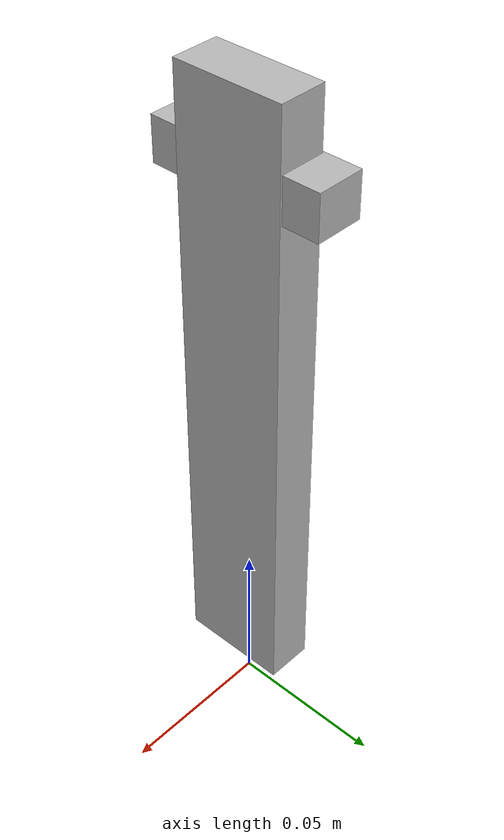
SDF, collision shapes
<?xml version='1.0'?>
<sdf version='1.6'>
  <model name='creeper_11_azul'>
    <link name='link'>
      <pose frame=''>0 -0 0.115 0 -0 0</pose>
      <inertial>
        <mass>0.00004</mass>
        <inertia>
          <ixx>2.01e-06</ixx>
          <ixy>0</ixy>
          <ixz>0</ixz>
          <iyy>2.01e-06</iyy>
          <iyz>0</iyz>
          <izz>5.9e-07</izz>
        </inertia>
        <pose frame=''>0 0 0 0 -0 0</pose>
      </inertial>
      <self_collide>0</self_collide>
      <enable_wind>0</enable_wind>
      <kinematic>0</kinematic>
      <gravity>1</gravity>
      <visual name='visual'>
        <pose frame=''>0 0 -0.15 0 0 0</pose>
        <geometry>
          <mesh>
            <uri>model://forca/creepers/creeper_11_azul/materials/textures/creeper.dae</uri>
             <scale>1 1 1</scale>
          </mesh>
        </geometry>
        <transparency>0</transparency>
        <cast_shadows>1</cast_shadows>
      </visual>
      <collision name='collision'>
        <laser_retro>0</laser_retro>
        <max_contacts>10</max_contacts>
        <pose frame=''>0 0 0 0 -0 0</pose>
        <geometry>
          <box>
            <size>0.015 0.035 0.2</size>
          </box>
        </geometry>
        <surface>
          <friction>
            <ode>
              <mu>10</mu>
              <mu2>10</mu2>
              <fdir1>0 0 0</fdir1>
              <slip1>0</slip1>
              <slip2>0</slip2>
            </ode>
            <torsional>
              <coefficient>1</coefficient>
              <patch_radius>0</patch_radius>
              <surface_radius>0</surface_radius>
              <use_patch_radius>1</use_patch_radius>
              <ode>
                <slip>0</slip>
              </ode>
            </torsional>
          </friction>
          <bounce>
            <restitution_coefficient>0</restitution_coefficient>
            <threshold>1e+06</threshold>
          </bounce>
          <contact>
            <collide_without_contact>0</collide_without_contact>
            <collide_without_contact_bitmask>1</collide_without_contact_bitmask>
            <collide_bitmask>1</collide_bitmask>
            <ode>
              <soft_cfm>0</soft_cfm>
              <soft_erp>0.2</soft_erp>
              <kp>1e+13</kp>
              <kd>1</kd>
              <max_vel>0.01</max_vel>
              <min_depth>0</min_depth>
            </ode>
            <bullet>
              <split_impulse>1</split_impulse>
              <split_impulse_penetration_threshold>-0.01</split_impulse_penetration_threshold>
              <soft_cfm>0</soft_cfm>
              <soft_erp>0.2</soft_erp>
              <kp>1e+13</kp>
              <kd>1</kd>
            </bullet>
          </contact>
        </surface>
      </collision>
    </link>
    <static>0</static>
    <allow_auto_disable>1</allow_auto_disable>
        <link name='link_0'>
      <inertial>
        <mass>1.17438e-05</mass>
        <inertia>
          <ixx>3.26224e-09</ixx>
          <ixy>0</ixy>
          <ixz>0</ixz>
          <iyy>4.1282e-10</iyy>
          <iyz>0</iyz>
          <izz>3.29988e-09</izz>
        </inertia>
        <pose>0 0 0 0 -0 0</pose>
      </inertial>
      <pose>-0.0007 0.00118 0.189635 -1.2e-05 1e-06 8e-06</pose>
      <self_collide>0</self_collide>
      <enable_wind>0</enable_wind>
      <kinematic>0</kinematic>
      <visual name='visual'>
        <pose frame=''>0 0 0.2 0 -0 0</pose>
        <geometry>
          <box>
            <size>0.0000006 0.000008 0.000001</size>
          </box>
        </geometry>
        <transparency>0</transparency>
        <cast_shadows>1</cast_shadows>
        <material>
          <shader type='vertex'>
            <normal_map>__default__</normal_map>
          </shader>
        </material>
      </visual>
      <collision name='collision'>
        <laser_retro>0</laser_retro>
        <max_contacts>10</max_contacts>
        <pose>0 0 0 0 -0 0</pose>
        <geometry>
          <box>
            <size>0.01517 0.056051 0.013845</size>
          </box>
        </geometry>
        <surface>
          <friction>
            <ode>
              <mu>1</mu>
              <mu2>1</mu2>
              <fdir1>0 0 0</fdir1>
              <slip1>0</slip1>
              <slip2>0</slip2>
            </ode>
            <torsional>
              <coefficient>1</coefficient>
              <patch_radius>0</patch_radius>
              <surface_radius>0</surface_radius>
              <use_patch_radius>1</use_patch_radius>
              <ode>
                <slip>0</slip>
              </ode>
            </torsional>
          </friction>
          <bounce>
            <restitution_coefficient>0</restitution_coefficient>
            <threshold>1e+06</threshold>
          </bounce>
          <contact>
            <collide_without_contact>0</collide_without_contact>
            <collide_without_contact_bitmask>1</collide_without_contact_bitmask>
            <collide_bitmask>1</collide_bitmask>
            <ode>
              <soft_cfm>0</soft_cfm>
              <soft_erp>0.2</soft_erp>
              <kp>1e+13</kp>
              <kd>1</kd>
              <max_vel>0.01</max_vel>
              <min_depth>0</min_depth>
            </ode>
            <bullet>
              <split_impulse>1</split_impulse>
              <split_impulse_penetration_threshold>-0.01</split_impulse_penetration_threshold>
              <soft_cfm>0</soft_cfm>
              <soft_erp>0.2</soft_erp>
              <kp>1e+13</kp>
              <kd>1</kd>
            </bullet>
          </contact>
        </surface>
      </collision>
    </link>
    <joint name='link_0_JOINT_0' type='fixed'>
      <parent>link</parent>
      <child>link_0</child>
      <pose>0 0 0 0 -0 0</pose>
      <physics>
        <ode>
          <limit>
            <cfm>0</cfm>
            <erp>0.2</erp>
          </limit>
          <suspension>
            <cfm>0</cfm>
            <erp>0.2</erp>
          </suspension>
        </ode>
      </physics>
    </joint>
    <static>0</static>
    <allow_auto_disable>1</allow_auto_disable>
    <link name='link_0'>
      <inertial>
        <mass>1.17438e-05</mass>
        <inertia>
          <ixx>3.26224e-09</ixx>
          <ixy>0</ixy>
          <ixz>0</ixz>
          <iyy>4.1282e-10</iyy>
          <iyz>0</iyz>
          <izz>3.29988e-09</izz>
        </inertia>
        <pose>0 0 0 0 -0 0</pose>
      </inertial>
      <pose>-0.0007 0.00118 0.189635 -1.2e-05 1e-06 8e-06</pose>
      <self_collide>0</self_collide>
      <enable_wind>0</enable_wind>
      <kinematic>0</kinematic>
      <visual name='visual'>
           <pose frame=''>0 0 0.2 0 -0 0</pose>
        <geometry>
          <box>
            <size>0.0000006 0.000008 0.000001</size>
          </box>
        </geometry>
        <transparency>0</transparency>
        <cast_shadows>1</cast_shadows>
        <material>
          <shader type='vertex'>
            <normal_map>__default__</normal_map>
          </shader>
        </material>
      </visual>
      <collision name='collision'>
        <laser_retro>0</laser_retro>
        <max_contacts>10</max_contacts>
        <pose>0 0 0 0 -0 0</pose>
        <geometry>
          <box>
            <size>0.01517 0.056051 0.013845</size>
          </box>
        </geometry>
        <surface>
          <friction>
            <ode>
              <mu>1</mu>
              <mu2>1</mu2>
              <fdir1>0 0 0</fdir1>
              <slip1>0</slip1>
              <slip2>0</slip2>
            </ode>
            <torsional>
              <coefficient>1</coefficient>
              <patch_radius>0</patch_radius>
              <surface_radius>0</surface_radius>
              <use_patch_radius>1</use_patch_radius>
              <ode>
                <slip>0</slip>
              </ode>
            </torsional>
          </friction>
          <bounce>
            <restitution_coefficient>0</restitution_coefficient>
            <threshold>1e+06</threshold>
          </bounce>
          <contact>
            <collide_without_contact>0</collide_without_contact>
            <collide_without_contact_bitmask>1</collide_without_contact_bitmask>
            <collide_bitmask>1</collide_bitmask>
            <ode>
              <soft_cfm>0</soft_cfm>
              <soft_erp>0.2</soft_erp>
              <kp>1e+13</kp>
              <kd>1</kd>
              <max_vel>0.01</max_vel>
              <min_depth>0</min_depth>
            </ode>
            <bullet>
              <split_impulse>1</split_impulse>
              <split_impulse_penetration_threshold>-0.01</split_impulse_penetration_threshold>
              <soft_cfm>0</soft_cfm>
              <soft_erp>0.2</soft_erp>
              <kp>1e+13</kp>
              <kd>1</kd>
            </bullet>
          </contact>
        </surface>
      </collision>
    </link>
    <joint name='link_0_JOINT_0' type='fixed'>
      <parent>link</parent>
      <child>link_0</child>
      <pose>0 0 0 0 -0 0</pose>
      <physics>
        <ode>
          <limit>
            <cfm>0</cfm>
            <erp>0.2</erp>
          </limit>
          <suspension>
            <cfm>0</cfm>
            <erp>0.2</erp>
          </suspension>
        </ode>
      </physics>
    </joint>
    <static>0</static>
    <allow_auto_disable>1</allow_auto_disable>
 </model>
</sdf>
